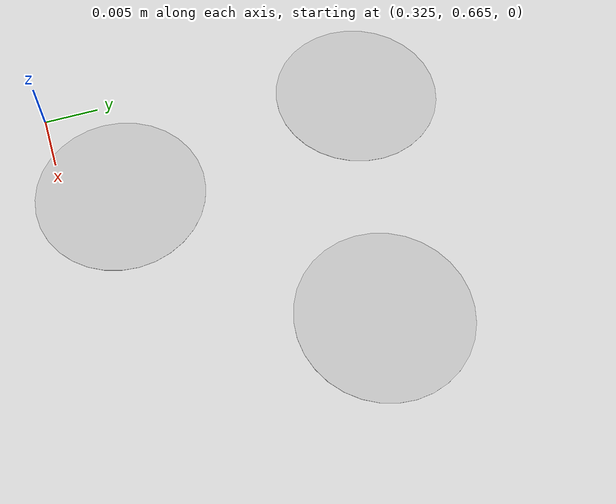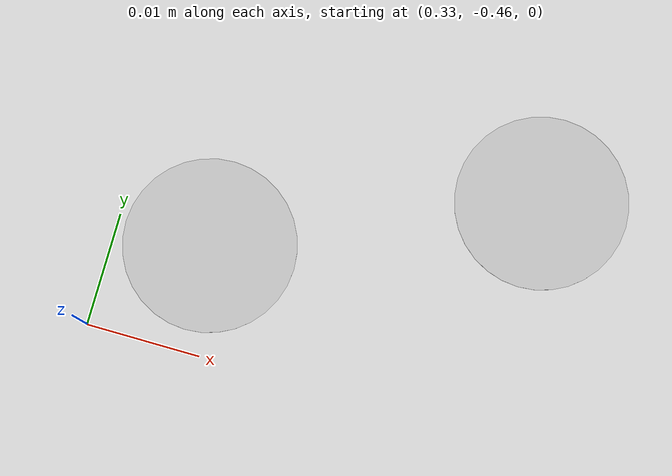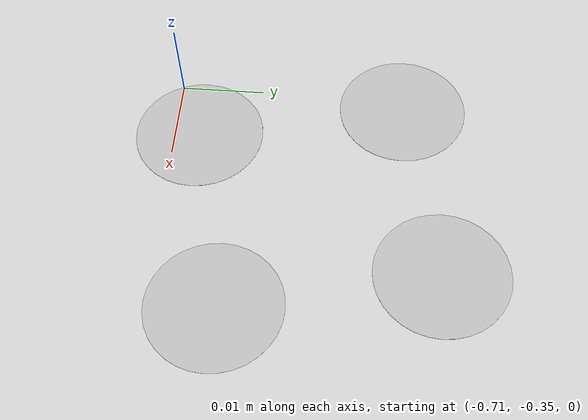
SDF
<sdf version="1.4">
 <world name="default">
  <scene>
   <shadows>false</shadows>
   <grid>false</grid>
   <origin_visual>false</origin_visual>
   <sky><clouds><speed>4</speed></clouds></sky>
  </scene>
  <model name="ground_plane">
   <static>1</static>
   <link name="link">
    <collision name="collision">
     <geometry><plane><normal>0 0 1</normal><size>100 100</size></plane></geometry>
     <surface><friction><ode><mu>100</mu><mu2>50</mu2></ode></friction></surface>
    </collision>
    <visual name="visual">
     <cast_shadows>0</cast_shadows>
     <geometry><plane><normal>0 0 1</normal><size>100 100</size></plane></geometry>
     <material>
      <script><uri>file://media/materials/scripts/gazebo.material</uri><name>Gazebo/Grey</name></script>
     </material>
    </visual>
    <velocity_decay><linear>0</linear><angular>0</angular></velocity_decay>
   </link>
   <link name="camera_link">
    <pose>0 0 3.048 0 1.57 1.57</pose>
    <inertial>
     <mass>0.1</mass>
     <inertia><ixx>1</ixx><ixy>0</ixy><ixz>0</ixz><iyy>1</iyy><iyz>0</iyz><izz>1</izz></inertia>
    </inertial>
    <collision name="collision"><geometry><box><size>0.001 0.001 0.001</size></box></geometry></collision>
    <visual name="visual"><geometry><box><size>0.001 0.001 0.001</size></box></geometry></visual>
    <sensor type="camera" name="camera">
     <camera name="overhead_cam">
      <horizontal_fov>0.8</horizontal_fov>
      <image><width>950</width><height>950</height></image>
      <clip><near>0.1</near><far>5</far></clip>
     </camera>
     <plugin name="camera_control" filename="libgazebo_ros_camera.so">
      <alwaysOn>true</alwaysOn>
      <updateRate>0</updateRate>
      <cameraName>gazebo/overhead_cam</cameraName>
      <imageTopicName>image_rect_color</imageTopicName>
      <cameraInfoTopicName>camera_info</cameraInfoTopicName>
      <frameName>overhead_cam_frame</frameName>
     </plugin>
     <always_on>1</always_on>
     <update_rate>30</update_rate>
     <visualize>0</visualize>
    </sensor>
   </link>
  </model>
  <include><uri>model://led/model_1</uri><name>led_1</name><pose>0.338393 -0.450683 0 0 0 0</pose></include>
  <include><uri>model://led/model_2</uri><name>led_2</name><pose>0.335962 0.670160 0 0 0 0</pose></include>
  <include><uri>model://led/model_3</uri><name>led_3</name><pose>-0.684642 -0.318091 0 0 0 0</pose></include>
  <plugin name="ros_interface_plugin" filename="librotors_gazebo_ros_interface_plugin.so"/>
  <spherical_coordinates>
   <surface_model>EARTH_WGS84</surface_model>
   <latitude_deg>47.3667</latitude_deg>
   <longitude_deg>8.5500</longitude_deg>
   <elevation>0.0</elevation>
   <heading_deg>0</heading_deg>
  </spherical_coordinates>
  <physics type="ode">
   <ode>
    <solver><type>quick</type><iters>1000</iters><sor>1.3</sor></solver>
    <constraints>
     <cfm>0</cfm>
     <erp>0.2</erp>
     <contact_max_correcting_vel>100</contact_max_correcting_vel>
     <contact_surface_layer>0.001</contact_surface_layer>
    </constraints>
   </ode>
   <max_step_size>0.001</max_step_size>
   <real_time_factor>1</real_time_factor>
   <real_time_update_rate>1000</real_time_update_rate>
   <gravity>0 0 -9.8</gravity>
  </physics>
 </world>
</sdf>

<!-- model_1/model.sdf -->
<sdf version="1.4">
    <model name="led">
      <pose>0 0 0 0 0 0</pose>
      <static>true</static>
      <link name="link">
        <visual name="visual1">
          <pose>0 0 0.002 1.57 0 0</pose>
          <geometry>
            <mesh>
              <uri>model://led/meshes/led.obj</uri>
              <scale>3 3 3</scale>
            </mesh>
          </geometry>
        </visual>

        <visual name="visual2">
          <pose>0.026382 0.011354 0.002 1.57 0 0</pose>
          <geometry>
            <mesh>
              <uri>model://led/meshes/led.obj</uri>
              <scale>3 3 3</scale>
            </mesh>
          </geometry>
        </visual>
      </link>
    </model>
</sdf>

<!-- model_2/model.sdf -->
<sdf version="1.4">
    <model name="led">
      <pose>0 0 0 0 0 0</pose>
      <static>true</static>
      <link name="link">
        <visual name="visual1">
          <pose>0 0 0.002 1.57 0 0</pose>
          <geometry>
            <mesh>
              <uri>model://led/meshes/led.obj</uri>
              <scale>3 3 3</scale>
            </mesh>
          </geometry>
        </visual>

        <visual name="visual2">
          <pose>-0.004183 0.023498 0.002 1.57 0 0</pose>
          <geometry>
            <mesh>
              <uri>model://led/meshes/led.obj</uri>
              <scale>3 3 3</scale>
            </mesh>
          </geometry>
        </visual>

        <visual name="visual3">
          <pose>0.017569 0.018231 0.002 1.57 0 0</pose>
          <geometry>
            <mesh>
              <uri>model://led/meshes/led.obj</uri>
              <scale>3 3 3</scale>
            </mesh>
          </geometry>
        </visual>
      </link>
    </model>
</sdf>

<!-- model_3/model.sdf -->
<sdf version="1.4">
    <model name="led">
      <pose>0 0 0 0 0 0</pose>
      <static>true</static>
      <link name="link">
        <visual name="visual1">
          <pose>0 0 0.002 1.57 0 0</pose>
          <geometry>
            <mesh>
              <uri>model://led/meshes/led.obj</uri>
              <scale>3 3 3</scale>
            </mesh>
          </geometry>
        </visual>

        <visual name="visual2">
          <pose>-0.016992 -0.028538 0.002 1.57 0 0</pose>
          <geometry>
            <mesh>
              <uri>model://led/meshes/led.obj</uri>
              <scale>3 3 3</scale>
            </mesh>
          </geometry>
        </visual>

        <visual name="visual3">
          <pose>-0.022132 -0.004594 0.002 1.57 0 0</pose>
          <geometry>
            <mesh>
              <uri>model://led/meshes/led.obj</uri>
              <scale>3 3 3</scale>
            </mesh>
          </geometry>
        </visual>

        <visual name="visual4">
          <pose>0.00534 -0.023883 0.002 1.57 0 0</pose>
          <geometry>
            <mesh>
              <uri>model://led/meshes/led.obj</uri>
              <scale>3 3 3</scale>
            </mesh>
          </geometry>
        </visual>
      </link>
    </model>
</sdf>
